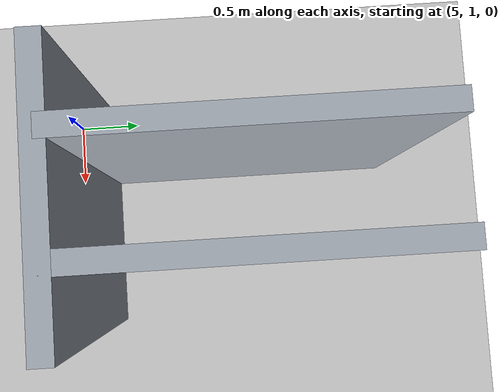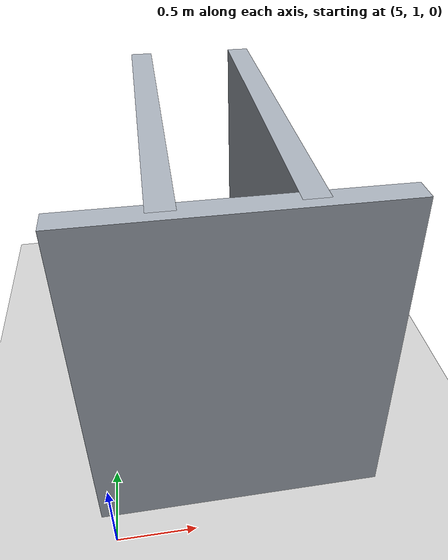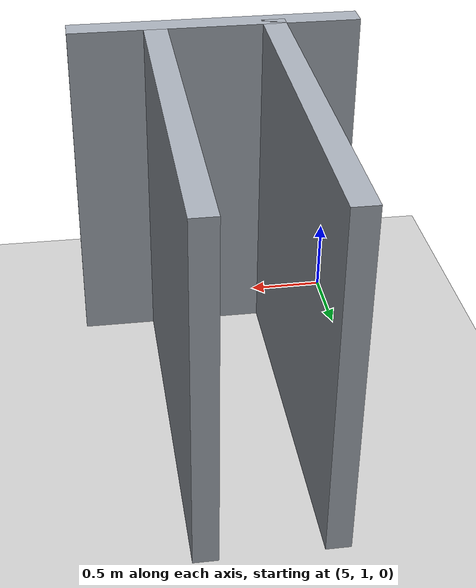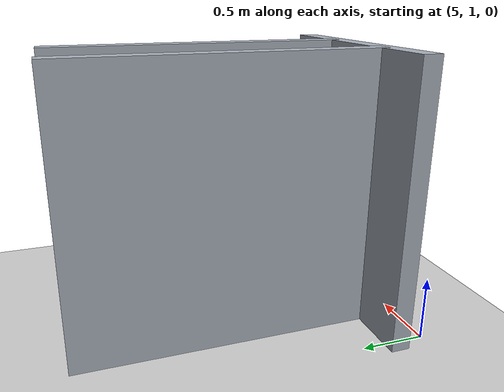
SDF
<sdf version="1.9">
 <world name="default">
  <model name="ground_plane">
   <static>true</static>
   <pose>4.75 0 -0.05 0 0 0</pose>
   <link name="body">
    <collision name="collision"><geometry><box><size>13.5 12 0.1</size></box></geometry></collision>
    <visual name="visual">
     <geometry><box><size>13.5 12 0.1</size></box></geometry>
     <material><ambient>0.8 0.8 0.8 1</ambient><diffuse>0.8 0.8 0.8 1</diffuse></material>
    </visual>
   </link>
  </model>
  <model name="room_1_1_1">
   <static>true</static>
   <pose>5.45 2.45 1.1 0 0 0</pose>
   <link name="body">
    <collision name="collision"><geometry><box><size>0.15 2.4 2.2</size></box></geometry></collision>
    <visual name="visual">
     <geometry><box><size>0.15 2.4 2.2</size></box></geometry>
     <material><ambient>0.65 0.68 0.72 1</ambient><diffuse>0.65 0.68 0.72 1</diffuse></material>
    </visual>
   </link>
  </model>
  <model name="hall_1_2">
   <static>true</static>
   <pose>5.825 1.25 1.1 0 0 0</pose>
   <link name="body">
    <collision name="collision">
     <geometry><box><size>1.8499999999999996 0.15 2.2</size></box></geometry>
    </collision>
    <visual name="visual">
     <geometry><box><size>1.8499999999999996 0.15 2.2</size></box></geometry>
     <material><ambient>0.65 0.68 0.72 1</ambient><diffuse>0.65 0.68 0.72 1</diffuse></material>
    </visual>
   </link>
  </model>
  <model name="room_1_2_-1">
   <static>true</static>
   <pose>6.2 2.45 1.1 0 0 0</pose>
   <link name="body">
    <collision name="collision"><geometry><box><size>0.15 2.4 2.2</size></box></geometry></collision>
    <visual name="visual">
     <geometry><box><size>0.15 2.4 2.2</size></box></geometry>
     <material><ambient>0.65 0.68 0.72 1</ambient><diffuse>0.65 0.68 0.72 1</diffuse></material>
    </visual>
   </link>
  </model>
 </world>
</sdf>
